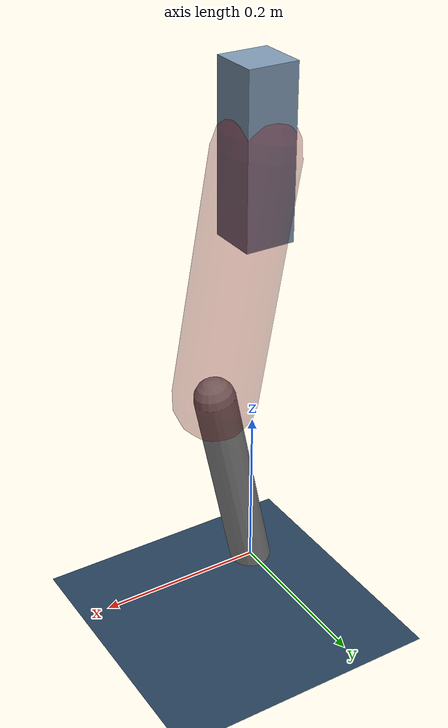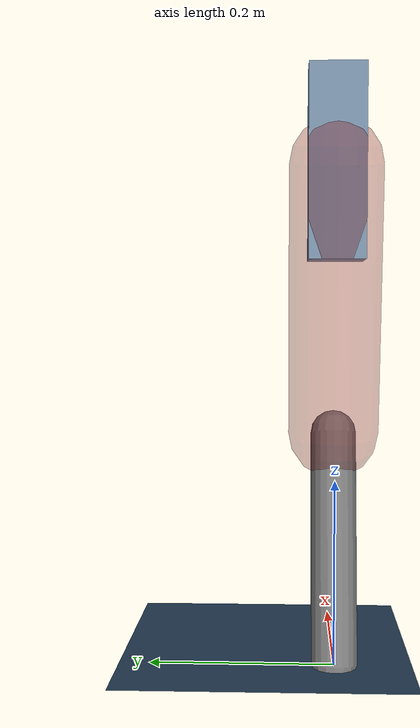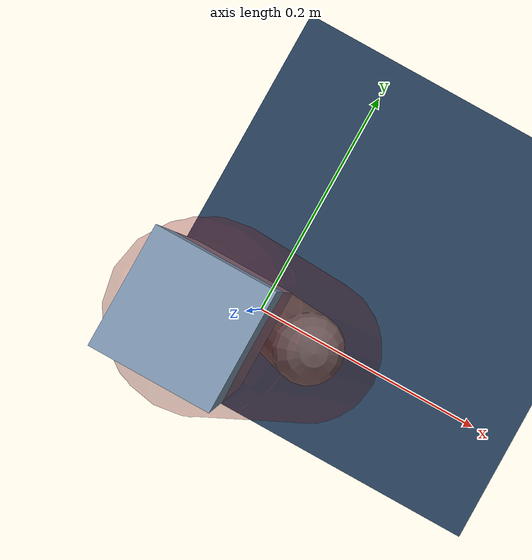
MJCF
<mujoco model="Hopper2D">
	<compiler inertiafromgeom="true" angle="radian" />
	<option timestep="0.001" integrator="implicit" cone="elliptic" solver="Newton" tolerance="1e-10" />

	<default>
		<geom contype="1" conaffinity="1" condim="3" friction="2 0.005 0.0001" solref="0.005 1" />
		<joint limited="true" damping="0.1" />
	</default>

	<asset>
		<texture name="skybox" type="skybox" builtin="gradient" rgb1=".4 .6 .8" rgb2="0 0 0" width="800" height="800" />
		<texture name="grid" type="2d" builtin="checker" rgb1=".1 .2 .3" rgb2=".2 .3 .4" width="300" height="300" mark="edge" markrgb=".2 .3 .4" />
		<material name="ground" texture="grid" texrepeat="1 1" texuniform="true" reflectance="0.1" />
		<material name="leg" rgba="0.5 0.6 0.7 1" />
	</asset>

	<worldbody>

		<geom name="floor" type="plane" size="5 5 0.25" material="ground" />

		<light directional="false" diffuse="0.8 0.8 0.8" specular="0.3 0.3 0.3" pos="0 0 2" dir="0 0 -1" />
		<light mode="targetbodycom" target="base" directional="false" diffuse="0.8 0.8 0.8" specular="0.3 0.3 0.3" pos="0 0 2" dir="0 0 -1" />

		<camera name="fixed" pos="0 -2 1" xyaxes="1 0 0 0 0 1" />
		<camera name="tracking" mode="trackcom" pos="0 -3 1" />

		<body name="root" pos="0 0 0.5354304472880209">
			<joint name="slide_x" type="slide" axis="1 0 0" range="-100 100" />
			<joint name="slide_z" type="slide" axis="0 0 1" range="0 10" />

			<body name="base" pos="0 0 0">
				<geom name="torso" type="box" size="0.03 0.03 0.1" mass="2.148" material="leg" />

				<body name="link1" pos="0 0 0" euler="0 1.3931460384736771 0">
					<joint type="hinge" axis="0 -1 0" pos="0 0 0" name="hinge1" limited="true" range="-3.14 3.14" stiffness="0" damping="0.1" />
					<geom name="thigh" type="capsule" fromto="0 0 0 0.29328510594000035 0 0" size="0.05" rgba="0.5 0 0 0.3" mass="0.970669786038001" />

					<body name="link2" pos="0.29328510594000035 0 0" euler="0 0.3846763140696955 0">
						<joint type="hinge" axis="0 -1 0" pos="0 0 0" name="hinge2" limited="true" range="-3.14 3.14" stiffness="0" damping="0.1" />
						<geom name="shank" type="capsule" fromto="0 0 0 0.25214534134802064 0 0" size="0.025" mass="0.4443162730784165" />

					</body>
				</body>
			</body>
		</body>
	</worldbody>

	<actuator>
		<motor name="torque1" joint="hinge1" ctrlrange="-35.706398686732186 35.706398686732186" ctrllimited="true" gear="1" />
		<motor name="torque2" joint="hinge2" ctrlrange="-115.83915196656272 115.83915196656272" ctrllimited="true" gear="1" />
	</actuator>
</mujoco>
